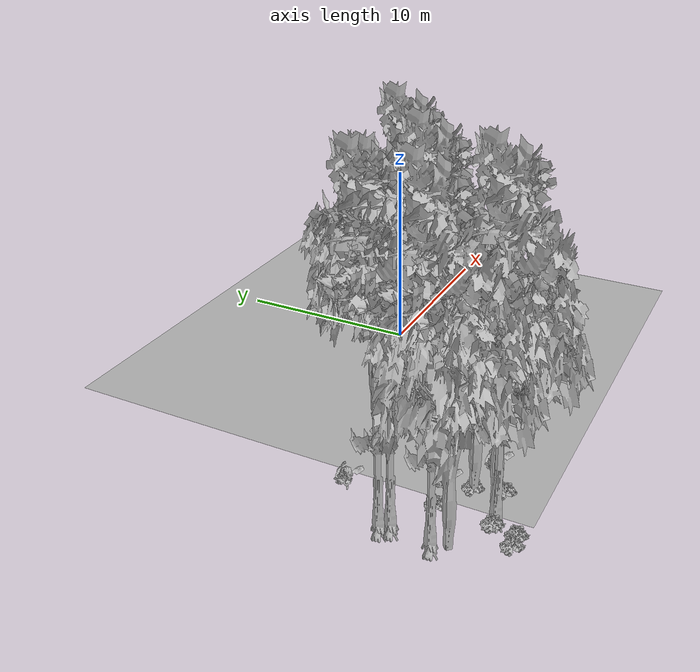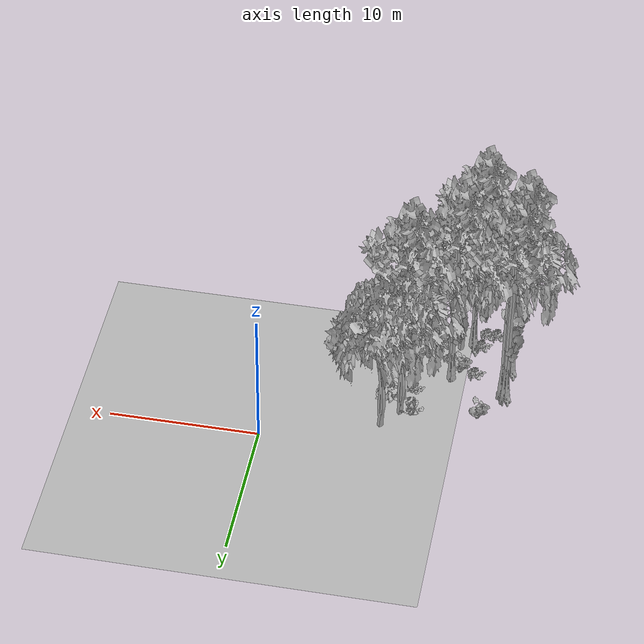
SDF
<sdf version="1.7">
 <world name="default">
  <model name="ground_plane">
   <static>1</static>
   <link name="link">
    <collision name="collision">
     <pose>-50 0 0 0 -0 0</pose>
     <geometry><plane><normal>0 0 1</normal><size>80 80</size></plane></geometry>
     <surface><contact><ode><min_depth>0.01</min_depth><max_vel>0</max_vel></ode></contact></surface>
    </collision>
    <visual name="grass">
     <cast_shadows>0</cast_shadows>
     <geometry>
      <mesh>
       <scale>0.46714285714285714 0.46714285714285714 0.1</scale>
       <uri>file://grass_plane/meshes/grass_plane.dae</uri>
      </mesh>
     </geometry>
    </visual>
   </link>
  </model>
  <model name="Tree 122">
   <static>1</static>
   <pose>-8.88356657060648 -3.749699254451798 0 1.57079 -0 0</pose>
   <link name="link">
    <collision name="collision">
     <geometry><mesh><scale>3.5 5 3.5</scale><uri>model://tree_2/meshes/tree_2.obj</uri></mesh></geometry>
    </collision>
    <visual name="visual">
     <geometry><mesh><scale>3.5 5 3.5</scale><uri>model://tree_2/meshes/tree_2.obj</uri></mesh></geometry>
    </visual>
   </link>
  </model>
  <model name="Tree 163">
   <static>1</static>
   <pose>-15.162623778040398 -6.991163753046131 0 1.57079 -0 0</pose>
   <link name="link">
    <collision name="collision">
     <geometry><mesh><scale>3.5 5 3.5</scale><uri>model://tree_9/meshes/tree_9.obj</uri></mesh></geometry>
    </collision>
    <visual name="visual">
     <geometry><mesh><scale>3.5 5 3.5</scale><uri>model://tree_9/meshes/tree_9.obj</uri></mesh></geometry>
    </visual>
   </link>
  </model>
  <model name="Tree 212">
   <static>1</static>
   <pose>-15.491449513258203 -9.0253023675786 0 1.57079 -0 0</pose>
   <link name="link">
    <collision name="collision">
     <geometry><mesh><scale>3.5 5 3.5</scale><uri>model://tree_9/meshes/tree_9.obj</uri></mesh></geometry>
    </collision>
    <visual name="visual">
     <geometry><mesh><scale>3.5 5 3.5</scale><uri>model://tree_9/meshes/tree_9.obj</uri></mesh></geometry>
    </visual>
   </link>
  </model>
  <model name="Tree 314">
   <static>1</static>
   <pose>-11.458487660875317 -9.320690618776048 0 1.57079 -0 0</pose>
   <link name="link">
    <collision name="collision">
     <geometry><mesh><scale>3.5 5 3.5</scale><uri>model://tree_2/meshes/tree_2.obj</uri></mesh></geometry>
    </collision>
    <visual name="visual">
     <geometry><mesh><scale>3.5 5 3.5</scale><uri>model://tree_2/meshes/tree_2.obj</uri></mesh></geometry>
    </visual>
   </link>
  </model>
  <model name="Tree 379">
   <static>1</static>
   <pose>-15.458845503555601 -9.796868392303715 0 1.57079 -0 0</pose>
   <link name="link">
    <collision name="collision">
     <geometry><mesh><scale>3.5 5 3.5</scale><uri>model://tree_2/meshes/tree_2.obj</uri></mesh></geometry>
    </collision>
    <visual name="visual">
     <geometry><mesh><scale>3.5 5 3.5</scale><uri>model://tree_2/meshes/tree_2.obj</uri></mesh></geometry>
    </visual>
   </link>
  </model>
  <model name="Tree 472">
   <static>1</static>
   <pose>-12.649103647996345 -10.871503559135498 0 1.57079 -0 0</pose>
   <link name="link">
    <collision name="collision">
     <geometry><mesh><scale>3.5 5 3.5</scale><uri>model://tree_9/meshes/tree_9.obj</uri></mesh></geometry>
    </collision>
    <visual name="visual">
     <geometry><mesh><scale>3.5 5 3.5</scale><uri>model://tree_9/meshes/tree_9.obj</uri></mesh></geometry>
    </visual>
   </link>
  </model>
  <model name="Tree 488">
   <static>1</static>
   <pose>-11.967476718109484 -10.550201113709985 0 1.57079 -0 0</pose>
   <link name="link">
    <collision name="collision">
     <geometry><mesh><scale>3.5 5 3.5</scale><uri>model://tree_2/meshes/tree_2.obj</uri></mesh></geometry>
    </collision>
    <visual name="visual">
     <geometry><mesh><scale>3.5 5 3.5</scale><uri>model://tree_2/meshes/tree_2.obj</uri></mesh></geometry>
    </visual>
   </link>
  </model>
  <model name="Tree 542">
   <static>1</static>
   <pose>-15.435529242719927 -6.54967857868462 0 1.57079 -0 0</pose>
   <link name="link">
    <collision name="collision">
     <geometry><mesh><scale>3.5 5 3.5</scale><uri>model://tree_9/meshes/tree_9.obj</uri></mesh></geometry>
    </collision>
    <visual name="visual">
     <geometry><mesh><scale>3.5 5 3.5</scale><uri>model://tree_9/meshes/tree_9.obj</uri></mesh></geometry>
    </visual>
   </link>
  </model>
  <model name="Tree 561">
   <static>1</static>
   <pose>-7.803324492912978 -2.369584475299817 0 1.57079 -0 0</pose>
   <link name="link">
    <collision name="collision">
     <geometry><mesh><scale>3.5 5 3.5</scale><uri>model://tree_2/meshes/tree_2.obj</uri></mesh></geometry>
    </collision>
    <visual name="visual">
     <geometry><mesh><scale>3.5 5 3.5</scale><uri>model://tree_2/meshes/tree_2.obj</uri></mesh></geometry>
    </visual>
   </link>
  </model>
  <model name="Tree 605">
   <static>1</static>
   <pose>-11.655557376421719 -7.447891646188879 0 1.57079 -0 0</pose>
   <link name="link">
    <collision name="collision">
     <geometry><mesh><scale>3.5 5 3.5</scale><uri>model://tree_9/meshes/tree_9.obj</uri></mesh></geometry>
    </collision>
    <visual name="visual">
     <geometry><mesh><scale>3.5 5 3.5</scale><uri>model://tree_9/meshes/tree_9.obj</uri></mesh></geometry>
    </visual>
   </link>
  </model>
  <model name="Tree 613">
   <static>1</static>
   <pose>-8.691281712280531 -5.035215911205043 0 1.57079 -0 0</pose>
   <link name="link">
    <collision name="collision">
     <geometry><mesh><scale>3.5 5 3.5</scale><uri>model://tree_9/meshes/tree_9.obj</uri></mesh></geometry>
    </collision>
    <visual name="visual">
     <geometry><mesh><scale>3.5 5 3.5</scale><uri>model://tree_9/meshes/tree_9.obj</uri></mesh></geometry>
    </visual>
   </link>
  </model>
  <model name="Bush 42">
   <static>1</static>
   <pose>-7.873386056139804 -4.721436952762232 0 1.57079 -0 0</pose>
   <link name="link">
    <collision name="collision">
     <geometry><mesh><scale>2 2 2</scale><uri>model://bush_1/meshes/bush_1.obj</uri></mesh></geometry>
     <surface><contact><collide_without_contact>false</collide_without_contact></contact></surface>
    </collision>
    <visual name="visual">
     <geometry><mesh><scale>2 2 2</scale><uri>model://bush_1/meshes/bush_1.obj</uri></mesh></geometry>
    </visual>
   </link>
  </model>
  <model name="Bush 59">
   <static>1</static>
   <pose>-13.300033905891713 -10.96364931241796 0 1.57079 -0 0</pose>
   <link name="link">
    <collision name="collision">
     <geometry><mesh><scale>2 2 2</scale><uri>model://bush_2/meshes/bush_2.obj</uri></mesh></geometry>
     <surface><contact><collide_without_contact>false</collide_without_contact></contact></surface>
    </collision>
    <visual name="visual">
     <geometry><mesh><scale>2 2 2</scale><uri>model://bush_2/meshes/bush_2.obj</uri></mesh></geometry>
    </visual>
   </link>
  </model>
  <model name="Bush 102">
   <static>1</static>
   <pose>-11.398917645735072 -9.289355581164386 0 1.57079 -0 0</pose>
   <link name="link">
    <collision name="collision">
     <geometry><mesh><scale>2 2 2</scale><uri>model://bush_2/meshes/bush_2.obj</uri></mesh></geometry>
     <surface><contact><collide_without_contact>false</collide_without_contact></contact></surface>
    </collision>
    <visual name="visual">
     <geometry><mesh><scale>2 2 2</scale><uri>model://bush_2/meshes/bush_2.obj</uri></mesh></geometry>
    </visual>
   </link>
  </model>
  <model name="Bush 150">
   <static>1</static>
   <pose>-13.859609038146615 -4.1219853057364375 0 1.57079 -0 0</pose>
   <link name="link">
    <collision name="collision">
     <geometry><mesh><scale>2 2 2</scale><uri>model://bush_0/meshes/bush_0.obj</uri></mesh></geometry>
     <surface><contact><collide_without_contact>false</collide_without_contact></contact></surface>
    </collision>
    <visual name="visual">
     <geometry><mesh><scale>2 2 2</scale><uri>model://bush_0/meshes/bush_0.obj</uri></mesh></geometry>
    </visual>
   </link>
  </model>
  <model name="Bush 209">
   <static>1</static>
   <pose>-9.88537595038985 -9.780541332924912 0 1.57079 -0 0</pose>
   <link name="link">
    <collision name="collision">
     <geometry><mesh><scale>2 2 2</scale><uri>model://bush_0/meshes/bush_0.obj</uri></mesh></geometry>
     <surface><contact><collide_without_contact>false</collide_without_contact></contact></surface>
    </collision>
    <visual name="visual">
     <geometry><mesh><scale>2 2 2</scale><uri>model://bush_0/meshes/bush_0.obj</uri></mesh></geometry>
    </visual>
   </link>
  </model>
  <model name="Bush 221">
   <static>1</static>
   <pose>-14.21233047589035 -12.2021712524438 0 1.57079 -0 0</pose>
   <link name="link">
    <collision name="collision">
     <geometry><mesh><scale>2 2 2</scale><uri>model://bush_2/meshes/bush_2.obj</uri></mesh></geometry>
     <surface><contact><collide_without_contact>false</collide_without_contact></contact></surface>
    </collision>
    <visual name="visual">
     <geometry><mesh><scale>2 2 2</scale><uri>model://bush_2/meshes/bush_2.obj</uri></mesh></geometry>
    </visual>
   </link>
  </model>
  <model name="Bush 278">
   <static>1</static>
   <pose>-9.623050192766652 -3.6978181062872224 0 1.57079 -0 0</pose>
   <link name="link">
    <collision name="collision">
     <geometry><mesh><scale>2 2 2</scale><uri>model://bush_4/meshes/bush_4.obj</uri></mesh></geometry>
     <surface><contact><collide_without_contact>false</collide_without_contact></contact></surface>
    </collision>
    <visual name="visual">
     <geometry><mesh><scale>2 2 2</scale><uri>model://bush_4/meshes/bush_4.obj</uri></mesh></geometry>
    </visual>
   </link>
  </model>
  <model name="Bush 312">
   <static>1</static>
   <pose>-13.520229912408343 -12.143193638946094 0 1.57079 -0 0</pose>
   <link name="link">
    <collision name="collision">
     <geometry><mesh><scale>2 2 2</scale><uri>model://bush_2/meshes/bush_2.obj</uri></mesh></geometry>
     <surface><contact><collide_without_contact>false</collide_without_contact></contact></surface>
    </collision>
    <visual name="visual">
     <geometry><mesh><scale>2 2 2</scale><uri>model://bush_2/meshes/bush_2.obj</uri></mesh></geometry>
    </visual>
   </link>
  </model>
  <model name="Bush 322">
   <static>1</static>
   <pose>-13.22638484115809 -8.252281333251297 0 1.57079 -0 0</pose>
   <link name="link">
    <collision name="collision">
     <geometry><mesh><scale>2 2 2</scale><uri>model://bush_2/meshes/bush_2.obj</uri></mesh></geometry>
     <surface><contact><collide_without_contact>false</collide_without_contact></contact></surface>
    </collision>
    <visual name="visual">
     <geometry><mesh><scale>2 2 2</scale><uri>model://bush_2/meshes/bush_2.obj</uri></mesh></geometry>
    </visual>
   </link>
  </model>
  <model name="Bush 339">
   <static>1</static>
   <pose>-12.10913302192132 -8.169033132371144 0 1.57079 -0 0</pose>
   <link name="link">
    <collision name="collision">
     <geometry><mesh><scale>2 2 2</scale><uri>model://bush_0/meshes/bush_0.obj</uri></mesh></geometry>
     <surface><contact><collide_without_contact>false</collide_without_contact></contact></surface>
    </collision>
    <visual name="visual">
     <geometry><mesh><scale>2 2 2</scale><uri>model://bush_0/meshes/bush_0.obj</uri></mesh></geometry>
    </visual>
   </link>
  </model>
  <model name="Bush 457">
   <static>1</static>
   <pose>-10.996552883145636 -10.69711079905052 0 1.57079 -0 0</pose>
   <link name="link">
    <collision name="collision">
     <geometry><mesh><scale>2 2 2</scale><uri>model://bush_2/meshes/bush_2.obj</uri></mesh></geometry>
     <surface><contact><collide_without_contact>false</collide_without_contact></contact></surface>
    </collision>
    <visual name="visual">
     <geometry><mesh><scale>2 2 2</scale><uri>model://bush_2/meshes/bush_2.obj</uri></mesh></geometry>
    </visual>
   </link>
  </model>
  <model name="Bush 589">
   <static>1</static>
   <pose>-9.4475566994271 -6.055086420489218 0 1.57079 -0 0</pose>
   <link name="link">
    <collision name="collision">
     <geometry><mesh><scale>2 2 2</scale><uri>model://bush_2/meshes/bush_2.obj</uri></mesh></geometry>
     <surface><contact><collide_without_contact>false</collide_without_contact></contact></surface>
    </collision>
    <visual name="visual">
     <geometry><mesh><scale>2 2 2</scale><uri>model://bush_2/meshes/bush_2.obj</uri></mesh></geometry>
    </visual>
   </link>
  </model>
 </world>
</sdf>
